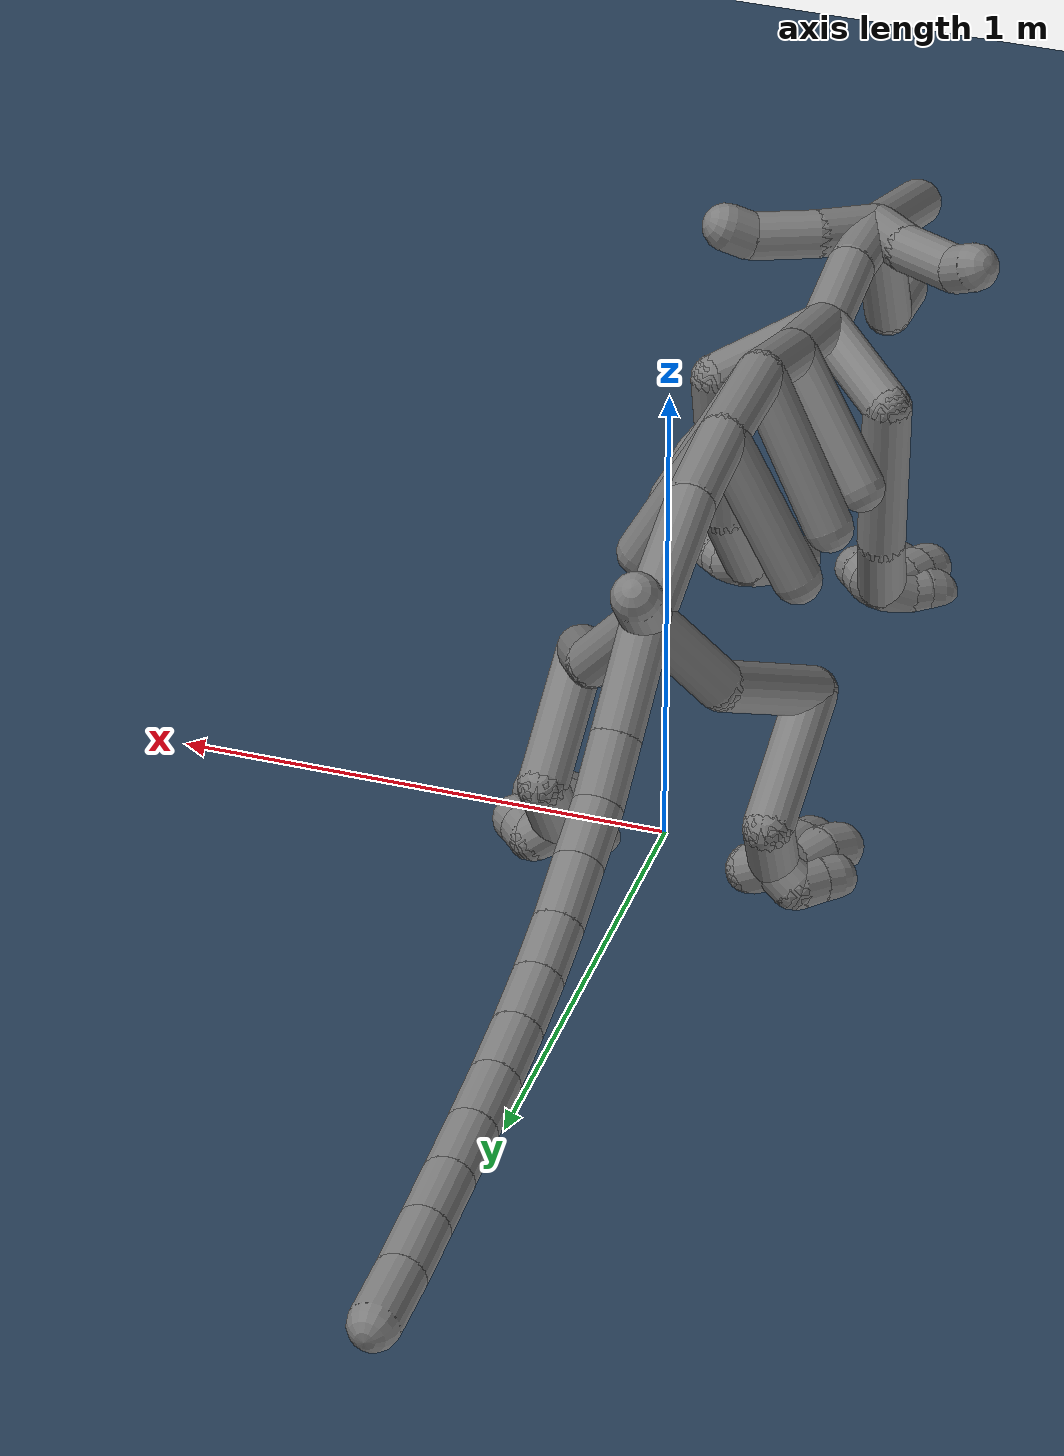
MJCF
<mujoco>
  <compiler meshdir="./mesh"/>
  <worldbody>
      <geom name="floor" size="0 0 .05" type="plane" material="grid" condim="3"/>
    <body name="Back_1" pos="-0.03638419508934021 0.32031768560409546 0.75876384973526">
    <joint type="free"/>
    <geom type="capsule" name="Back_1_geom" size="0.05" fromto="0 0 0 0.0 -0.07109183073043823 -0.09252709150314331"/>
      <body name="Back_2" pos="0.0 -0.07109183073043823 -0.09252709150314331">
      <joint type="hinge" name="rx_Back_2" axis="1 0 0" range="-15.000000417413029 15.000000417413029"/>
      <joint type="hinge" name="ry_Back_2" axis="0 1 0" range="-9.99999970909292 9.99999970909292"/>
      <joint type="hinge" name="rz_Back_2" axis="0 0 1" range="-15.000000417413029 15.000000417413029"/>
      <geom type="capsule" name="Back_2_geom" size="0.05" fromto="0 0 0 0.0 -0.2740018367767334 0.09516853094100952"/>
        <body name="Back_3" pos="0.0 -0.2740018367767334 0.09516853094100952">
        <joint type="hinge" name="rx_Back_3" axis="1 0 0" range="-15.000000417413029 15.000000417413029"/>
        <joint type="hinge" name="ry_Back_3" axis="0 1 0" range="-9.99999970909292 9.99999970909292"/>
        <joint type="hinge" name="rz_Back_3" axis="0 0 1" range="-15.000000417413029 15.000000417413029"/>
        <geom type="capsule" name="Back_3_geom" size="0.05" fromto="0 0 0 0.0 -0.2097725123167038 0.021728336811065674"/>
          <body name="Back_4" pos="0.0 -0.2097725123167038 0.021728336811065674">
          <joint type="hinge" name="rx_Back_4" axis="1 0 0" range="-15.000000417413029 15.000000417413029"/>
          <joint type="hinge" name="ry_Back_4" axis="0 1 0" range="-9.99999970909292 9.99999970909292"/>
          <joint type="hinge" name="rz_Back_4" axis="0 0 1" range="-15.000000417413029 15.000000417413029"/>
          <geom type="capsule" name="Back_4_geom" size="0.05" fromto="0 0 0 0.0 -0.2558934688568115 -0.008959829807281494"/>
            <body name="Back_5" pos="0.0 -0.2558934688568115 -0.008959829807281494">
            <joint type="hinge" name="rx_Back_5" axis="1 0 0" range="-15.000000417413029 15.000000417413029"/>
            <joint type="hinge" name="ry_Back_5" axis="0 1 0" range="-9.99999970909292 9.99999970909292"/>
            <joint type="hinge" name="rz_Back_5" axis="0 0 1" range="-15.000000417413029 15.000000417413029"/>
            <geom type="capsule" name="Back_5_geom" size="0.05" fromto="0 0 0 0.0 -0.2308562994003296 -0.08291542530059814"/>
              <body name="Back_6" pos="0.0 -0.2308562994003296 -0.08291542530059814">
              <joint type="hinge" name="rx_Back_6" axis="1 0 0" range="-15.000000417413029 15.000000417413029"/>
              <joint type="hinge" name="ry_Back_6" axis="0 1 0" range="-9.99999970909292 9.99999970909292"/>
              <joint type="hinge" name="rz_Back_6" axis="0 0 1" range="-15.000000417413029 15.000000417413029"/>
              <geom type="capsule" name="Back_6_geom" size="0.05" fromto="0 0 0 0.0 -0.2347009778022766 -0.07146763801574707"/>
                <body name="Neck" pos="0.0 -0.2347009778022766 -0.07146763801574707">
                <geom type="capsule" name="Neck_geom" size="0.05" fromto="0 0 0 0.0 -0.18661510944366455 0.0330730676651001"/>
                  <body name="Head" pos="0.0 -0.18661510944366455 0.0330730676651001">
                  <geom type="capsule" name="Head_geom" size="0.05" fromto="0 0 0 -0.003004610538482666 -0.18622291088104248 -0.011018574237823486"/>
                    <body name="L_Ear_1" pos="-0.003004610538482666 -0.18622291088104248 -0.011018574237823486">
                    <geom type="capsule" name="L_Ear_1_geom" size="0.05" fromto="0 0 0 0.0987759679555893 0.10522949695587158 0.02556777000427246"/>
                      <body name="L_Ear_2" pos="0.0987759679555893 0.10522949695587158 0.02556777000427246">
                      <geom type="capsule" name="L_Ear_2_geom" size="0.05" fromto="0 0 0 0.1209293007850647 0.06745648384094238 0.010155320167541504"/>
                        <body name="L_Ear_3" pos="0.1209293007850647 0.06745648384094238 0.010155320167541504">
                        <geom type="capsule" name="L_Ear_3_geom" size="0.05" fromto="0 0 0 0.0458882600069046 0.02377474308013916 0.02690833806991577"/>
                        </body>
                      </body>
                    </body>
                    <body name="Jaw_1" pos="-0.003004610538482666 -0.18622291088104248 -0.011018574237823486">
                    <geom type="capsule" name="Jaw_1_geom" size="0.05" fromto="0 0 0 0.003004610538482666 -0.12477743625640869 -0.2739276885986328"/>
                      <body name="Jaw_2" pos="0.003004610538482666 -0.12477743625640869 -0.2739276885986328">
                      <geom type="capsule" name="Jaw_2_geom" size="0.05" fromto="0 0 0 0.002912815660238266 -0.13363265991210938 -0.018688827753067017"/>
                      </body>
                    </body>
                    <body name="R_Ear_1" pos="-0.003004610538482666 -0.18622291088104248 -0.011018574237823486">
                    <geom type="capsule" name="R_Ear_1_geom" size="0.05" fromto="0 0 0 -0.09276671707630157 0.10522949695587158 0.02556777000427246"/>
                      <body name="R_Ear_2" pos="-0.09276671707630157 0.10522949695587158 0.02556777000427246">
                      <geom type="capsule" name="R_Ear_2_geom" size="0.05" fromto="0 0 0 -0.12092931568622589 0.06745648384094238 0.010155320167541504"/>
                        <body name="R_Ear_3" pos="-0.12092931568622589 0.06745648384094238 0.010155320167541504">
                        <geom type="capsule" name="R_Ear_3_geom" size="0.05" fromto="0 0 0 -0.04588821530342102 0.02377474308013916 0.02690833806991577"/>
                        </body>
                      </body>
                    </body>
                    <body name="Nose" pos="-0.003004610538482666 -0.18622291088104248 -0.011018574237823486">
                    <geom type="capsule" name="Nose_geom" size="0.05" fromto="0 0 0 7.450580596923828e-09 -0.3301737308502197 -0.12187623977661133"/>
                    </body>
                  </body>
                </body>
                <body name="L_F_Paw_1" pos="0.0 -0.2347009778022766 -0.07146763801574707">
                <geom type="capsule" name="L_F_Paw_1_geom" size="0.05" fromto="0 0 0 0.17953817546367645 0.16833937168121338 -0.06021338701248169"/>
                  <body name="L_F_Paw_2" pos="0.17953817546367645 0.16833937168121338 -0.06021338701248169">
                  <joint type="hinge" name="rx_L_F_Paw_2" axis="1 0 0" range="-19.99999941818584 9.99999970909292"/>
                  <joint type="hinge" name="ry_L_F_Paw_2" axis="0 1 0" range="-19.99999941818584 19.99999941818584"/>
                  <joint type="hinge" name="rz_L_F_Paw_2" axis="0 0 1" range="-45.00000125223908 45.00000125223908"/>
                  <geom type="capsule" name="L_F_Paw_2_geom" size="0.05" fromto="0 0 0 -0.014132246375083923 -0.039042651653289795 -0.34415319561958313"/>
                    <body name="L_F_Paw_3" pos="-0.014132246375083923 -0.039042651653289795 -0.34415319561958313">
                    <joint type="hinge" name="rz_L_F_Paw_3" axis="0 0 1" range="-30.000000834826057 30.000000834826057"/>
                    <geom type="capsule" name="L_F_Paw_3_geom" size="0.05" fromto="0 0 0 -0.021816067397594452 -0.09817075729370117 -0.17515115439891815"/>
                      <body name="L_F_Finger_2_1" pos="-0.021816067397594452 -0.09817075729370117 -0.17515115439891815">
                      <geom type="capsule" name="L_F_Finger_2_1_geom" size="0.05" fromto="0 0 0 -0.0023449361324310303 -0.0585518479347229 -0.010070698335766792"/>
                        <body name="L_F_Finger_2_2" pos="-0.0023449361324310303 -0.0585518479347229 -0.010070698335766792">
                        <geom type="capsule" name="L_F_Finger_2_2_geom" size="0.05" fromto="0 0 0 -0.003160804510116577 -0.054094672203063965 -0.013577762991189957"/>
                          <body name="L_F_Finger_2_3" pos="-0.003160804510116577 -0.054094672203063965 -0.013577762991189957">
                          <geom type="capsule" name="L_F_Finger_2_3_geom" size="0.05" fromto="0 0 0 -0.0014780759811401367 -0.03571367263793945 -0.015574176795780659"/>
                          </body>
                        </body>
                      </body>
                      <body name="L_F_Finger_3_1" pos="-0.021816067397594452 -0.09817075729370117 -0.17515115439891815">
                      <geom type="capsule" name="L_F_Finger_3_1_geom" size="0.05" fromto="0 0 0 0.028311945497989655 -0.05318993330001831 -0.0065687671303749084"/>
                        <body name="L_F_Finger_3_2" pos="0.028311945497989655 -0.05318993330001831 -0.0065687671303749084">
                        <geom type="capsule" name="L_F_Finger_3_2_geom" size="0.05" fromto="0 0 0 0.01821213960647583 -0.04630100727081299 -0.007779579609632492"/>
                          <body name="L_F_Finger_3_3" pos="0.01821213960647583 -0.04630100727081299 -0.007779579609632492">
                          <geom type="capsule" name="L_F_Finger_3_3_geom" size="0.05" fromto="0 0 0 0.013797998428344727 -0.03786909580230713 -0.011330236680805683"/>
                          </body>
                        </body>
                      </body>
                      <body name="L_F_Finger_4_1" pos="-0.021816067397594452 -0.09817075729370117 -0.17515115439891815">
                      <geom type="capsule" name="L_F_Finger_4_1_geom" size="0.05" fromto="0 0 0 0.046337805688381195 -0.029399394989013672 -0.027229413390159607"/>
                        <body name="L_F_Finger_4_2" pos="0.046337805688381195 -0.029399394989013672 -0.027229413390159607">
                        <geom type="capsule" name="L_F_Finger_4_2_geom" size="0.05" fromto="0 0 0 0.025139302015304565 -0.022921442985534668 -0.003358127549290657"/>
                          <body name="L_F_Finger_4_3" pos="0.025139302015304565 -0.022921442985534668 -0.003358127549290657">
                          <geom type="capsule" name="L_F_Finger_4_3_geom" size="0.05" fromto="0 0 0 0.02037981152534485 -0.01885223388671875 -0.010923127643764019"/>
                          </body>
                        </body>
                      </body>
                      <body name="L_F_Finger_1_1" pos="-0.021816067397594452 -0.09817075729370117 -0.17515115439891815">
                      <geom type="capsule" name="L_F_Finger_1_1_geom" size="0.05" fromto="0 0 0 -0.031319648027420044 -0.041713058948516846 -0.024164263159036636"/>
                        <body name="L_F_Finger_1_2" pos="-0.031319648027420044 -0.041713058948516846 -0.024164263159036636">
                        <geom type="capsule" name="L_F_Finger_1_2_geom" size="0.05" fromto="0 0 0 -0.026167772710323334 -0.03220939636230469 3.284960985183716e-05"/>
                          <body name="L_F_Finger_1_3" pos="-0.026167772710323334 -0.03220939636230469 3.284960985183716e-05">
                          <geom type="capsule" name="L_F_Finger_1_3_geom" size="0.05" fromto="0 0 0 -0.01939433254301548 -0.024831295013427734 -0.01097294595092535"/>
                          </body>
                        </body>
                      </body>
                    </body>
                  </body>
                </body>
                <body name="R_F_Paw_1" pos="0.0 -0.2347009778022766 -0.07146763801574707">
                <geom type="capsule" name="R_F_Paw_1_geom" size="0.05" fromto="0 0 0 -0.17953811585903168 0.16833937168121338 -0.06021338701248169"/>
                  <body name="R_F_Paw_2" pos="-0.17953811585903168 0.16833937168121338 -0.06021338701248169">
                  <joint type="hinge" name="rx_R_F_Paw_2" axis="1 0 0" range="-19.99999941818584 9.99999970909292"/>
                  <joint type="hinge" name="ry_R_F_Paw_2" axis="0 1 0" range="-19.99999941818584 19.99999941818584"/>
                  <joint type="hinge" name="rz_R_F_Paw_2" axis="0 0 1" range="-45.00000125223908 45.00000125223908"/>
                  <geom type="capsule" name="R_F_Paw_2_geom" size="0.05" fromto="0 0 0 0.014132246375083923 -0.039042651653289795 -0.3441533148288727"/>
                    <body name="R_F_Paw_3" pos="0.014132246375083923 -0.039042651653289795 -0.3441533148288727">
                    <joint type="hinge" name="rz_R_F_Paw_3" axis="0 0 1" range="-30.000000834826057 30.000000834826057"/>
                    <geom type="capsule" name="R_F_Paw_3_geom" size="0.05" fromto="0 0 0 0.02181607484817505 -0.09817063808441162 -0.17515107989311218"/>
                      <body name="R_F_Finger_2_1" pos="0.02181607484817505 -0.09817063808441162 -0.17515107989311218">
                      <geom type="capsule" name="R_F_Finger_2_1_geom" size="0.05" fromto="0 0 0 0.0023449212312698364 -0.0585518479347229 -0.01007070392370224"/>
                        <body name="R_F_Finger_2_2" pos="0.0023449212312698364 -0.0585518479347229 -0.01007070392370224">
                        <geom type="capsule" name="R_F_Finger_2_2_geom" size="0.05" fromto="0 0 0 0.003160819411277771 -0.054094672203063965 -0.013577766716480255"/>
                          <body name="R_F_Finger_2_3" pos="0.003160819411277771 -0.054094672203063965 -0.013577766716480255">
                          <geom type="capsule" name="R_F_Finger_2_3_geom" size="0.05" fromto="0 0 0 0.0014780610799789429 -0.03571367263793945 -0.015574180521070957"/>
                          </body>
                        </body>
                      </body>
                      <body name="R_F_Finger_3_1" pos="0.02181607484817505 -0.09817063808441162 -0.17515107989311218">
                      <geom type="capsule" name="R_F_Finger_3_1_geom" size="0.05" fromto="0 0 0 -0.028311967849731445 -0.05318993330001831 -0.006568770855665207"/>
                        <body name="R_F_Finger_3_2" pos="-0.028311967849731445 -0.05318993330001831 -0.006568770855665207">
                        <geom type="capsule" name="R_F_Finger_3_2_geom" size="0.05" fromto="0 0 0 -0.01821209490299225 -0.04630100727081299 -0.007779577746987343"/>
                          <body name="R_F_Finger_3_3" pos="-0.01821209490299225 -0.04630100727081299 -0.007779577746987343">
                          <geom type="capsule" name="R_F_Finger_3_3_geom" size="0.05" fromto="0 0 0 -0.01379801332950592 -0.03786909580230713 -0.011330240406095982"/>
                          </body>
                        </body>
                      </body>
                      <body name="R_F_Finger_4_1" pos="0.02181607484817505 -0.09817063808441162 -0.17515107989311218">
                      <geom type="capsule" name="R_F_Finger_4_1_geom" size="0.05" fromto="0 0 0 -0.046337783336639404 -0.029399394989013672 -0.027229413390159607"/>
                        <body name="R_F_Finger_4_2" pos="-0.046337783336639404 -0.029399394989013672 -0.027229413390159607">
                        <geom type="capsule" name="R_F_Finger_4_2_geom" size="0.05" fromto="0 0 0 -0.025139272212982178 -0.022921442985534668 -0.003358127549290657"/>
                          <body name="R_F_Finger_4_3" pos="-0.025139272212982178 -0.022921442985534668 -0.003358127549290657">
                          <geom type="capsule" name="R_F_Finger_4_3_geom" size="0.05" fromto="0 0 0 -0.02037981152534485 -0.01885223388671875 -0.010923132300376892"/>
                          </body>
                        </body>
                      </body>
                      <body name="R_F_Finger_1_1" pos="0.02181607484817505 -0.09817063808441162 -0.17515107989311218">
                      <geom type="capsule" name="R_F_Finger_1_1_geom" size="0.05" fromto="0 0 0 0.031319648027420044 -0.04171311855316162 -0.024164274334907532"/>
                        <body name="R_F_Finger_1_2" pos="0.031319648027420044 -0.04171311855316162 -0.024164274334907532">
                        <geom type="capsule" name="R_F_Finger_1_2_geom" size="0.05" fromto="0 0 0 0.02616778016090393 -0.03220939636230469 3.2842159271240234e-05"/>
                          <body name="R_F_Finger_1_3" pos="0.02616778016090393 -0.03220939636230469 3.2842159271240234e-05">
                          <geom type="capsule" name="R_F_Finger_1_3_geom" size="0.05" fromto="0 0 0 0.019394338130950928 -0.02483123540878296 -0.010972957126796246"/>
                          </body>
                        </body>
                      </body>
                    </body>
                  </body>
                </body>
              </body>
              <body name="R_Rib_5" pos="0.0 -0.2308562994003296 -0.08291542530059814">
              <geom type="capsule" name="R_Rib_5_geom" size="0.05" fromto="0 0 0 -0.1704041063785553 0.08789783716201782 -0.23081496357917786"/>
              </body>
              <body name="L_Rib_5" pos="0.0 -0.2308562994003296 -0.08291542530059814">
              <geom type="capsule" name="L_Rib_5_geom" size="0.05" fromto="0 0 0 0.170278400182724 0.0878978967666626 -0.2308151125907898"/>
              </body>
            </body>
            <body name="R_Rib_4" pos="0.0 -0.2558934688568115 -0.008959829807281494">
            <geom type="capsule" name="R_Rib_4_geom" size="0.05" fromto="0 0 0 -0.15984874963760376 0.048999011516571045 -0.2935454845428467"/>
            </body>
            <body name="L_Rib_4" pos="0.0 -0.2558934688568115 -0.008959829807281494">
            <geom type="capsule" name="L_Rib_4_geom" size="0.05" fromto="0 0 0 0.15972281992435455 0.04899898171424866 -0.2935452461242676"/>
            </body>
          </body>
          <body name="R_Rib_3" pos="0.0 -0.2097725123167038 0.021728336811065674">
          <geom type="capsule" name="R_Rib_3_geom" size="0.05" fromto="0 0 0 -0.15795756876468658 0.009853675961494446 -0.28945979475975037"/>
          </body>
          <body name="L_Rib_3" pos="0.0 -0.2097725123167038 0.021728336811065674">
          <geom type="capsule" name="L_Rib_3_geom" size="0.05" fromto="0 0 0 0.15783175826072693 0.009853675961494446 -0.2894596755504608"/>
          </body>
        </body>
      </body>
      <body name="Tail_1" pos="0.0 -0.07109183073043823 -0.09252709150314331">
      <joint type="hinge" name="rx_Tail_1" axis="1 0 0" range="-4.99999985454646 4.99999985454646"/>
      <joint type="hinge" name="rz_Tail_1" axis="0 0 1" range="-4.99999985454646 4.99999985454646"/>
      <geom type="capsule" name="Tail_1_geom" size="0.05" fromto="0 0 0 0.0 0.19382226467132568 -0.14527785778045654"/>
        <body name="Tail_2" pos="0.0 0.19382226467132568 -0.14527785778045654">
        <joint type="hinge" name="rx_Tail_2" axis="1 0 0" range="-4.99999985454646 4.99999985454646"/>
        <joint type="hinge" name="rz_Tail_2" axis="0 0 1" range="-4.99999985454646 4.99999985454646"/>
        <geom type="capsule" name="Tail_2_geom" size="0.05" fromto="0 0 0 0.0 0.11086165904998779 -0.08177107572555542"/>
          <body name="Tail_3" pos="0.0 0.11086165904998779 -0.08177107572555542">
          <joint type="hinge" name="rx_Tail_3" axis="1 0 0" range="-4.99999985454646 4.99999985454646"/>
          <joint type="hinge" name="rz_Tail_3" axis="0 0 1" range="-4.99999985454646 4.99999985454646"/>
          <geom type="capsule" name="Tail_3_geom" size="0.05" fromto="0 0 0 0.0 0.11859244108200073 -0.052198827266693115"/>
            <body name="Tail_4" pos="0.0 0.11859244108200073 -0.052198827266693115">
            <joint type="hinge" name="rx_Tail_4" axis="1 0 0" range="-4.99999985454646 4.99999985454646"/>
            <joint type="hinge" name="rz_Tail_4" axis="0 0 1" range="-4.99999985454646 4.99999985454646"/>
            <geom type="capsule" name="Tail_4_geom" size="0.05" fromto="0 0 0 0.0 0.12198221683502197 -0.054768264293670654"/>
              <body name="Tail_5" pos="0.0 0.12198221683502197 -0.054768264293670654">
              <joint type="hinge" name="rx_Tail_5" axis="1 0 0" range="-4.99999985454646 4.99999985454646"/>
              <joint type="hinge" name="rz_Tail_5" axis="0 0 1" range="-4.99999985454646 4.99999985454646"/>
              <geom type="capsule" name="Tail_5_geom" size="0.05" fromto="0 0 0 0.0 0.11853504180908203 -0.03858238458633423"/>
                <body name="Tail_6" pos="0.0 0.11853504180908203 -0.03858238458633423">
                <joint type="hinge" name="rx_Tail_6" axis="1 0 0" range="-4.99999985454646 4.99999985454646"/>
                <joint type="hinge" name="rz_Tail_6" axis="0 0 1" range="-4.99999985454646 4.99999985454646"/>
                <geom type="capsule" name="Tail_6_geom" size="0.05" fromto="0 0 0 0.0 0.12328189611434937 -0.02907276153564453"/>
                  <body name="Tail_7" pos="0.0 0.12328189611434937 -0.02907276153564453">
                  <joint type="hinge" name="rx_Tail_7" axis="1 0 0" range="-4.99999985454646 4.99999985454646"/>
                  <joint type="hinge" name="rz_Tail_7" axis="0 0 1" range="-4.99999985454646 4.99999985454646"/>
                  <geom type="capsule" name="Tail_7_geom" size="0.05" fromto="0 0 0 0.0 0.12698960304260254 -0.021487578749656677"/>
                    <body name="Tail_8" pos="0.0 0.12698960304260254 -0.021487578749656677">
                    <joint type="hinge" name="rx_Tail_8" axis="1 0 0" range="-4.99999985454646 4.99999985454646"/>
                    <joint type="hinge" name="rz_Tail_8" axis="0 0 1" range="-4.99999985454646 4.99999985454646"/>
                    <geom type="capsule" name="Tail_8_geom" size="0.05" fromto="0 0 0 0.0 0.12981581687927246 -0.01584780216217041"/>
                      <body name="Tail_9" pos="0.0 0.12981581687927246 -0.01584780216217041">
                      <joint type="hinge" name="rx_Tail_9" axis="1 0 0" range="-4.99999985454646 4.99999985454646"/>
                      <joint type="hinge" name="rz_Tail_9" axis="0 0 1" range="-4.99999985454646 4.99999985454646"/>
                      <geom type="capsule" name="Tail_9_geom" size="0.05" fromto="0 0 0 0.0 0.1312851905822754 -0.013129889965057373"/>
                        <body name="Tail_10" pos="0.0 0.1312851905822754 -0.013129889965057373">
                        <joint type="hinge" name="rx_Tail_10" axis="1 0 0" range="-4.99999985454646 4.99999985454646"/>
                        <joint type="hinge" name="rz_Tail_10" axis="0 0 1" range="-4.99999985454646 4.99999985454646"/>
                        <geom type="capsule" name="Tail_10_geom" size="0.05" fromto="0 0 0 0.0 0.13169467449188232 -0.011130914092063904"/>
                          <body name="Tail_11" pos="0.0 0.13169467449188232 -0.011130914092063904">
                          <joint type="hinge" name="rx_Tail_11" axis="1 0 0" range="-4.99999985454646 4.99999985454646"/>
                          <joint type="hinge" name="rz_Tail_11" axis="0 0 1" range="-4.99999985454646 4.99999985454646"/>
                          <geom type="capsule" name="Tail_11_geom" size="0.05" fromto="0 0 0 0.0 0.13223564624786377 -0.009466737508773804"/>
                            <body name="Tail_12" pos="0.0 0.13223564624786377 -0.009466737508773804">
                            <joint type="hinge" name="rx_Tail_12" axis="1 0 0" range="-4.99999985454646 4.99999985454646"/>
                            <joint type="hinge" name="rz_Tail_12" axis="0 0 1" range="-4.99999985454646 4.99999985454646"/>
                            <geom type="capsule" name="Tail_12_geom" size="0.05" fromto="0 0 0 0.0029128193855285645 0.1335829496383667 -0.008842617273330688"/>
                            </body>
                          </body>
                        </body>
                      </body>
                    </body>
                  </body>
                </body>
              </body>
            </body>
          </body>
        </body>
      </body>
      <body name="R_B_Paw_1" pos="0.0 -0.07109183073043823 -0.09252709150314331">
      <joint type="hinge" name="rx_R_B_Paw_1" axis="1 0 0" range="-39.99999883637168 39.99999883637168"/>
      <geom type="capsule" name="R_B_Paw_1_geom" size="0.05" fromto="0 0 0 -0.12856116890907288 -0.06068773567676544 -0.1629948616027832"/>
        <body name="R_B_Paw_2" pos="-0.12856116890907288 -0.06068773567676544 -0.1629948616027832">
        <joint type="hinge" name="rx_R_B_Paw_2" axis="1 0 0" range="-25.00000012650595 31.999999752116263"/>
        <joint type="hinge" name="ry_R_B_Paw_2" axis="0 1 0" range="-19.99999941818584 19.99999941818584"/>
        <joint type="hinge" name="rz_R_B_Paw_2" axis="0 0 1" range="-30.000000834826057 39.99999883637168"/>
        <geom type="capsule" name="R_B_Paw_2_geom" size="0.05" fromto="0 0 0 -0.1057131290435791 -0.26967060565948486 -0.16305962204933167"/>
          <body name="R_B_Paw_3" pos="-0.1057131290435791 -0.26967060565948486 -0.16305962204933167">
          <joint type="hinge" name="rz_R_B_Paw_3" axis="0 0 1" range="-39.99999883637168 15.000000417413029"/>
          <geom type="capsule" name="R_B_Paw_3_geom" size="0.05" fromto="0 0 0 0.007300645112991333 0.27059853076934814 -0.14332710206508636"/>
            <body name="R_B_Paw_4" pos="0.007300645112991333 0.27059853076934814 -0.14332710206508636">
            <joint type="hinge" name="rz_R_B_Paw_4" axis="0 0 1" range="-19.99999941818584 19.99999941818584"/>
            <geom type="capsule" name="R_B_Paw_4_geom" size="0.05" fromto="0 0 0 0.006926417350769043 -0.07383957505226135 -0.13510023057460785"/>
              <body name="R_B_Finger_1_1" pos="0.006926417350769043 -0.07383957505226135 -0.13510023057460785">
              <geom type="capsule" name="R_B_Finger_1_1_geom" size="0.05" fromto="0 0 0 0.05062621831893921 -0.013811320066452026 -0.03395809978246689"/>
                <body name="R_B_Finger_1_2" pos="0.05062621831893921 -0.013811320066452026 -0.03395809978246689">
                <geom type="capsule" name="R_B_Finger_1_2_geom" size="0.05" fromto="0 0 0 0.005271047353744507 -0.025599569082260132 -0.015743762254714966"/>
                  <body name="R_B_Finger_1_3" pos="0.005271047353744507 -0.025599569082260132 -0.015743762254714966">
                  <geom type="capsule" name="R_B_Finger_1_3_geom" size="0.05" fromto="0 0 0 0.0033015161752700806 -0.016032546758651733 -0.011576322838664055"/>
                  </body>
                </body>
              </body>
              <body name="R_B_Finger_2_1" pos="0.006926417350769043 -0.07383957505226135 -0.13510023057460785">
              <geom type="capsule" name="R_B_Finger_2_1_geom" size="0.05" fromto="0 0 0 0.023152485489845276 -0.0402398407459259 -0.023621879518032074"/>
                <body name="R_B_Finger_2_2" pos="0.023152485489845276 -0.0402398407459259 -0.023621879518032074">
                <geom type="capsule" name="R_B_Finger_2_2_geom" size="0.05" fromto="0 0 0 0.0022902637720108032 -0.06750748306512833 -8.12634825706482e-05"/>
                  <body name="R_B_Finger_2_3" pos="0.0022902637720108032 -0.06750748306512833 -8.12634825706482e-05">
                  <geom type="capsule" name="R_B_Finger_2_3_geom" size="0.05" fromto="0 0 0 0.002057865262031555 -0.047204043716192245 -0.020307043567299843"/>
                  </body>
                </body>
              </body>
              <body name="R_B_Finger_3_1" pos="0.006926417350769043 -0.07383957505226135 -0.13510023057460785">
              <geom type="capsule" name="R_B_Finger_3_1_geom" size="0.05" fromto="0 0 0 -0.0052787065505981445 -0.03944149613380432 -0.012112438678741455"/>
                <body name="R_B_Finger_3_2" pos="-0.0052787065505981445 -0.03944149613380432 -0.012112438678741455">
                <geom type="capsule" name="R_B_Finger_3_2_geom" size="0.05" fromto="0 0 0 -0.01556369662284851 -0.07996440678834915 -0.018579034134745598"/>
                  <body name="R_B_Finger_3_3" pos="-0.01556369662284851 -0.07996440678834915 -0.018579034134745598">
                  <geom type="capsule" name="R_B_Finger_3_3_geom" size="0.05" fromto="0 0 0 -0.007601529359817505 -0.04353569820523262 -0.018819646909832954"/>
                  </body>
                </body>
              </body>
              <body name="R_B_Finger_4_1" pos="0.006926417350769043 -0.07383957505226135 -0.13510023057460785">
              <geom type="capsule" name="R_B_Finger_4_1_geom" size="0.05" fromto="0 0 0 -0.029244542121887207 -0.02724441885948181 -0.019830886274576187"/>
                <body name="R_B_Finger_4_2" pos="-0.029244542121887207 -0.02724441885948181 -0.019830886274576187">
                <geom type="capsule" name="R_B_Finger_4_2_geom" size="0.05" fromto="0 0 0 -0.034585773944854736 -0.06896093487739563 -0.0018789730966091156"/>
                  <body name="R_B_Finger_4_3" pos="-0.034585773944854736 -0.06896093487739563 -0.0018789730966091156">
                  <geom type="capsule" name="R_B_Finger_4_3_geom" size="0.05" fromto="0 0 0 -0.02458670735359192 -0.04846162348985672 -0.017758013680577278"/>
                  </body>
                </body>
              </body>
              <body name="R_B_Finger_5_1" pos="0.006926417350769043 -0.07383957505226135 -0.13510023057460785">
              <geom type="capsule" name="R_B_Finger_5_1_geom" size="0.05" fromto="0 0 0 -0.046136558055877686 0.01041865348815918 -0.03638231009244919"/>
                <body name="R_B_Finger_5_2" pos="-0.046136558055877686 0.01041865348815918 -0.03638231009244919">
                <geom type="capsule" name="R_B_Finger_5_2_geom" size="0.05" fromto="0 0 0 -0.03107309341430664 -0.03808602690696716 -0.005154406651854515"/>
                  <body name="R_B_Finger_5_3" pos="-0.03107309341430664 -0.03808602690696716 -0.005154406651854515">
                  <geom type="capsule" name="R_B_Finger_5_3_geom" size="0.05" fromto="0 0 0 -0.023181915283203125 -0.027915887534618378 -0.007805719971656799"/>
                  </body>
                </body>
              </body>
            </body>
          </body>
        </body>
      </body>
      <body name="L_B_Paw_1" pos="0.0 -0.07109183073043823 -0.09252709150314331">
      <joint type="hinge" name="rx_L_B_Paw_1" axis="1 0 0" range="-39.99999883637168 39.99999883637168"/>
      <geom type="capsule" name="L_B_Paw_1_geom" size="0.05" fromto="0 0 0 0.12856115400791168 -0.06068772077560425 -0.1629948616027832"/>
        <body name="L_B_Paw_2" pos="0.12856115400791168 -0.06068772077560425 -0.1629948616027832">
        <joint type="hinge" name="rx_L_B_Paw_2" axis="1 0 0" range="-25.00000012650595 31.999999752116263"/>
        <joint type="hinge" name="ry_L_B_Paw_2" axis="0 1 0" range="-19.99999941818584 19.99999941818584"/>
        <joint type="hinge" name="rz_L_B_Paw_2" axis="0 0 1" range="-39.99999883637168 30.000000834826057"/>
        <geom type="capsule" name="L_B_Paw_2_geom" size="0.05" fromto="0 0 0 0.10558731853961945 -0.2696705758571625 -0.16305959224700928"/>
          <body name="L_B_Paw_3" pos="0.10558731853961945 -0.2696705758571625 -0.16305959224700928">
          <joint type="hinge" name="rz_L_B_Paw_3" axis="0 0 1" range="-15.000000417413029 39.99999883637168"/>
          <geom type="capsule" name="L_B_Paw_3_geom" size="0.05" fromto="0 0 0 -0.007300674915313721 0.27059847116470337 -0.14332719147205353"/>
            <body name="L_B_Paw_4" pos="-0.007300674915313721 0.27059847116470337 -0.14332719147205353">
            <joint type="hinge" name="rz_L_B_Paw_4" axis="0 0 1" range="-19.99999941818584 19.99999941818584"/>
            <geom type="capsule" name="L_B_Paw_4_geom" size="0.05" fromto="0 0 0 -0.006800621747970581 -0.07383953034877777 -0.1351001262664795"/>
              <body name="L_B_Finger_1_1" pos="-0.006800621747970581 -0.07383953034877777 -0.1351001262664795">
              <geom type="capsule" name="L_B_Finger_1_1_geom" size="0.05" fromto="0 0 0 -0.05062621831893921 -0.013811305165290833 -0.0339580737054348"/>
                <body name="L_B_Finger_1_2" pos="-0.05062621831893921 -0.013811305165290833 -0.0339580737054348">
                <geom type="capsule" name="L_B_Finger_1_2_geom" size="0.05" fromto="0 0 0 -0.005271017551422119 -0.025599554181098938 -0.015743745490908623"/>
                  <body name="L_B_Finger_1_3" pos="-0.005271017551422119 -0.025599554181098938 -0.015743745490908623">
                  <geom type="capsule" name="L_B_Finger_1_3_geom" size="0.05" fromto="0 0 0 -0.00330149382352829 -0.016032539308071136 -0.011576313525438309"/>
                  </body>
                </body>
              </body>
              <body name="L_B_Finger_2_1" pos="-0.006800621747970581 -0.07383953034877777 -0.1351001262664795">
              <geom type="capsule" name="L_B_Finger_2_1_geom" size="0.05" fromto="0 0 0 -0.02315250039100647 -0.04023981839418411 -0.023621857166290283"/>
                <body name="L_B_Finger_2_2" pos="-0.02315250039100647 -0.04023981839418411 -0.023621857166290283">
                <geom type="capsule" name="L_B_Finger_2_2_geom" size="0.05" fromto="0 0 0 -0.0022902637720108032 -0.06750747561454773 -8.124485611915588e-05"/>
                  <body name="L_B_Finger_2_3" pos="-0.0022902637720108032 -0.06750747561454773 -8.124485611915588e-05">
                  <geom type="capsule" name="L_B_Finger_2_3_geom" size="0.05" fromto="0 0 0 -0.0020578503608703613 -0.04720403999090195 -0.020307017490267754"/>
                  </body>
                </body>
              </body>
              <body name="L_B_Finger_3_1" pos="-0.006800621747970581 -0.07383953034877777 -0.1351001262664795">
              <geom type="capsule" name="L_B_Finger_3_1_geom" size="0.05" fromto="0 0 0 0.005278676748275757 -0.039441466331481934 -0.012112416326999664"/>
                <body name="L_B_Finger_3_2" pos="0.005278676748275757 -0.039441466331481934 -0.012112416326999664">
                <geom type="capsule" name="L_B_Finger_3_2_geom" size="0.05" fromto="0 0 0 0.015563726425170898 -0.07996442168951035 -0.018579015508294106"/>
                  <body name="L_B_Finger_3_3" pos="0.015563726425170898 -0.07996442168951035 -0.018579015508294106">
                  <geom type="capsule" name="L_B_Finger_3_3_geom" size="0.05" fromto="0 0 0 0.007601499557495117 -0.043535683304071426 -0.018819618970155716"/>
                  </body>
                </body>
              </body>
              <body name="L_B_Finger_4_1" pos="-0.006800621747970581 -0.07383953034877777 -0.1351001262664795">
              <geom type="capsule" name="L_B_Finger_4_1_geom" size="0.05" fromto="0 0 0 0.02924451231956482 -0.027244403958320618 -0.019830867648124695"/>
                <body name="L_B_Finger_4_2" pos="0.02924451231956482 -0.027244403958320618 -0.019830867648124695">
                <geom type="capsule" name="L_B_Finger_4_2_geom" size="0.05" fromto="0 0 0 0.034585773944854736 -0.06896091997623444 -0.0018789581954479218"/>
                  <body name="L_B_Finger_4_3" pos="0.034585773944854736 -0.06896091997623444 -0.0018789581954479218">
                  <geom type="capsule" name="L_B_Finger_4_3_geom" size="0.05" fromto="0 0 0 0.02458667755126953 -0.04846159741282463 -0.01775798574090004"/>
                  </body>
                </body>
              </body>
              <body name="L_B_Finger_5_1" pos="-0.006800621747970581 -0.07383953034877777 -0.1351001262664795">
              <geom type="capsule" name="L_B_Finger_5_1_geom" size="0.05" fromto="0 0 0 0.046136513352394104 0.01041865348815918 -0.0363822840154171"/>
                <body name="L_B_Finger_5_2" pos="0.046136513352394104 0.01041865348815918 -0.0363822840154171">
                <geom type="capsule" name="L_B_Finger_5_2_geom" size="0.05" fromto="0 0 0 0.03107304871082306 -0.03808602690696716 -0.005154384300112724"/>
                  <body name="L_B_Finger_5_3" pos="0.03107304871082306 -0.03808602690696716 -0.005154384300112724">
                  <geom type="capsule" name="L_B_Finger_5_3_geom" size="0.05" fromto="0 0 0 0.0231819748878479 -0.027915887534618378 -0.0078057050704956055"/>
                  </body>
                </body>
              </body>
            </body>
          </body>
        </body>
      </body>
    </body>
  </worldbody>
<asset>
<texture name="grid" type="2d" builtin="checker" width="512" height="512" rgb1=".1 .2 .3" rgb2=".2 .3 .4"/>
<material name="grid" texture="grid" texrepeat="1 1" texuniform="true" reflectance=".2"/>
  </asset></mujoco>
